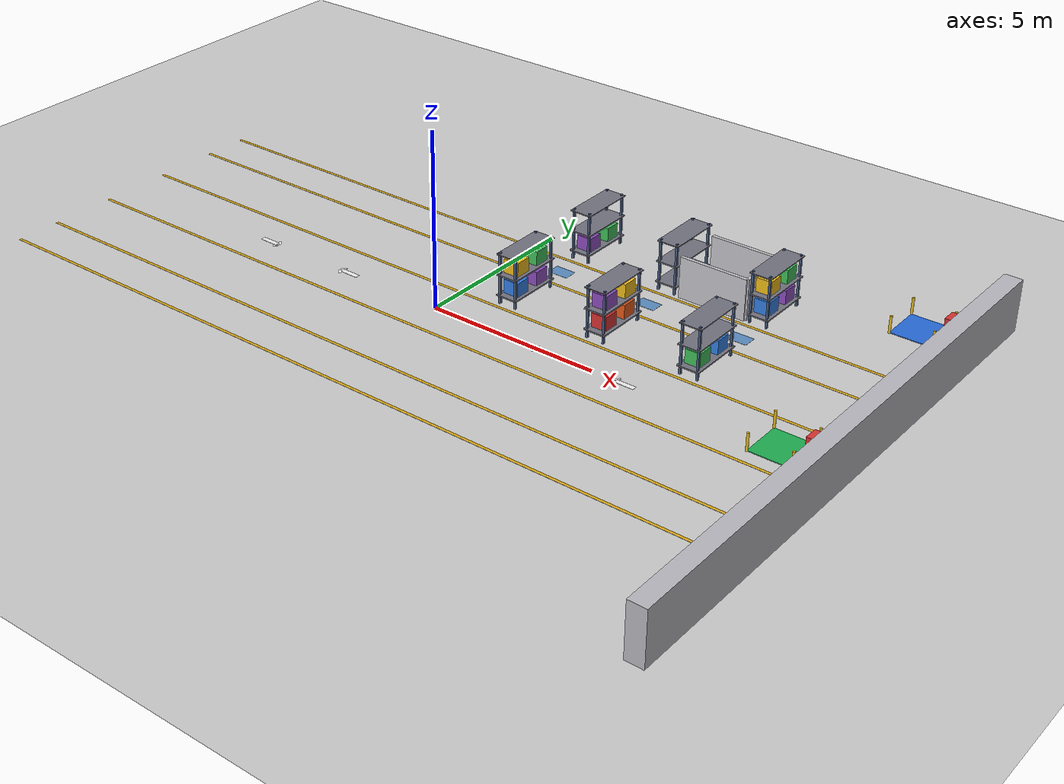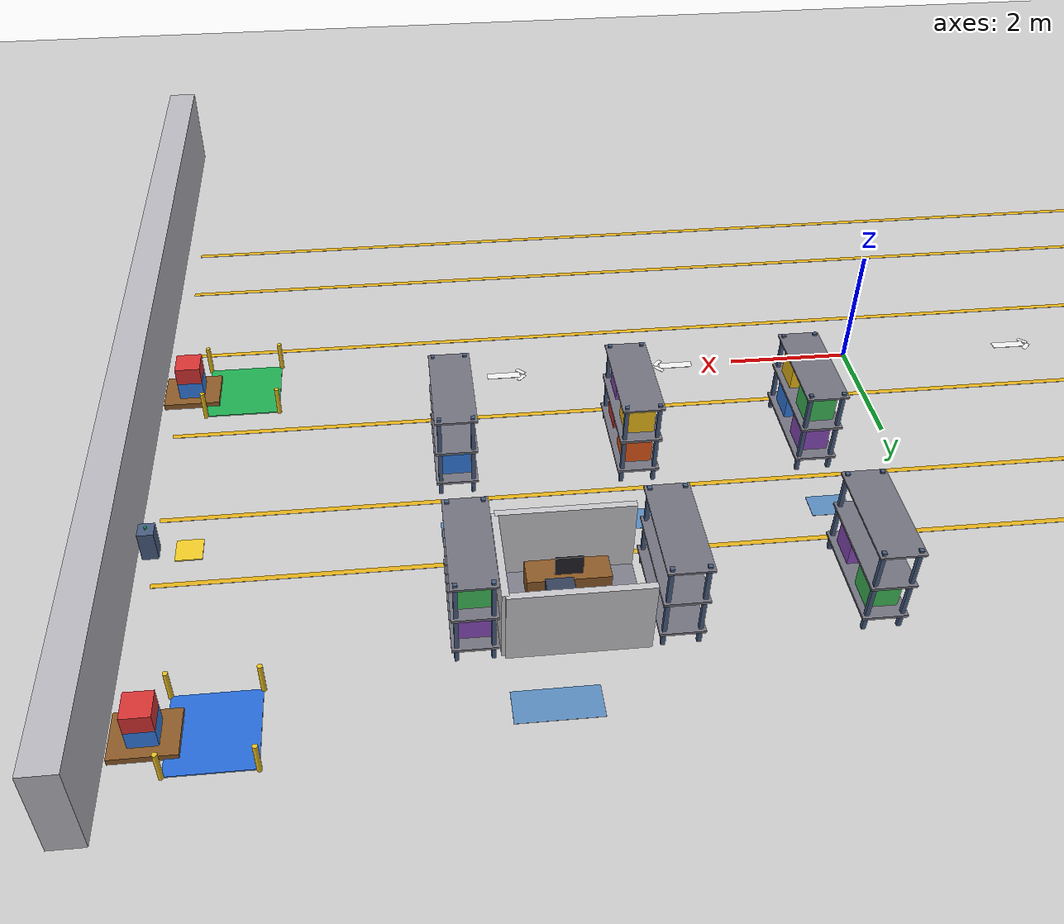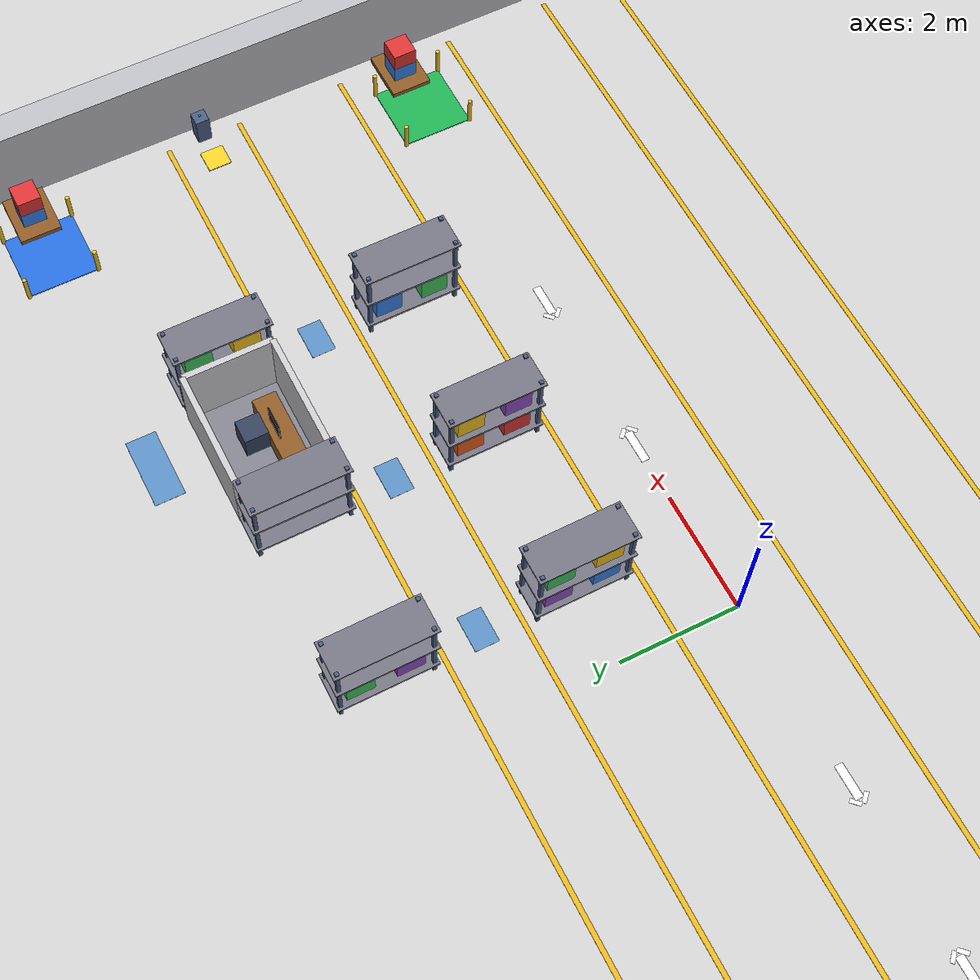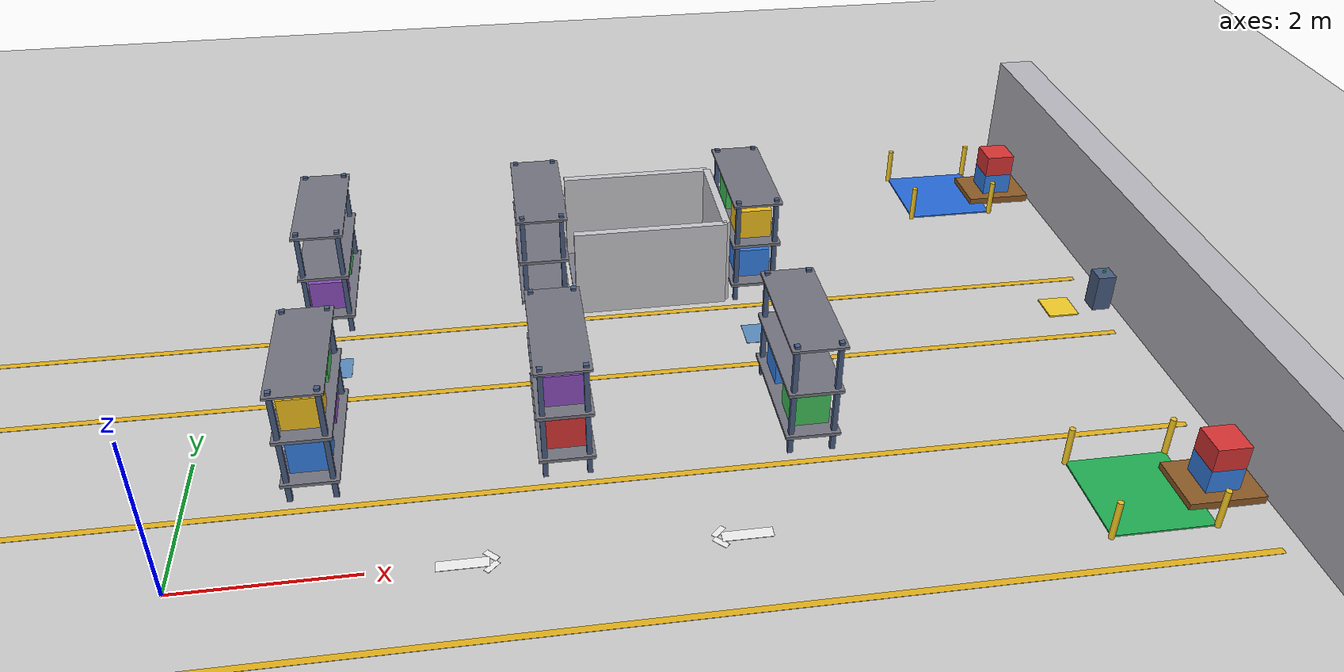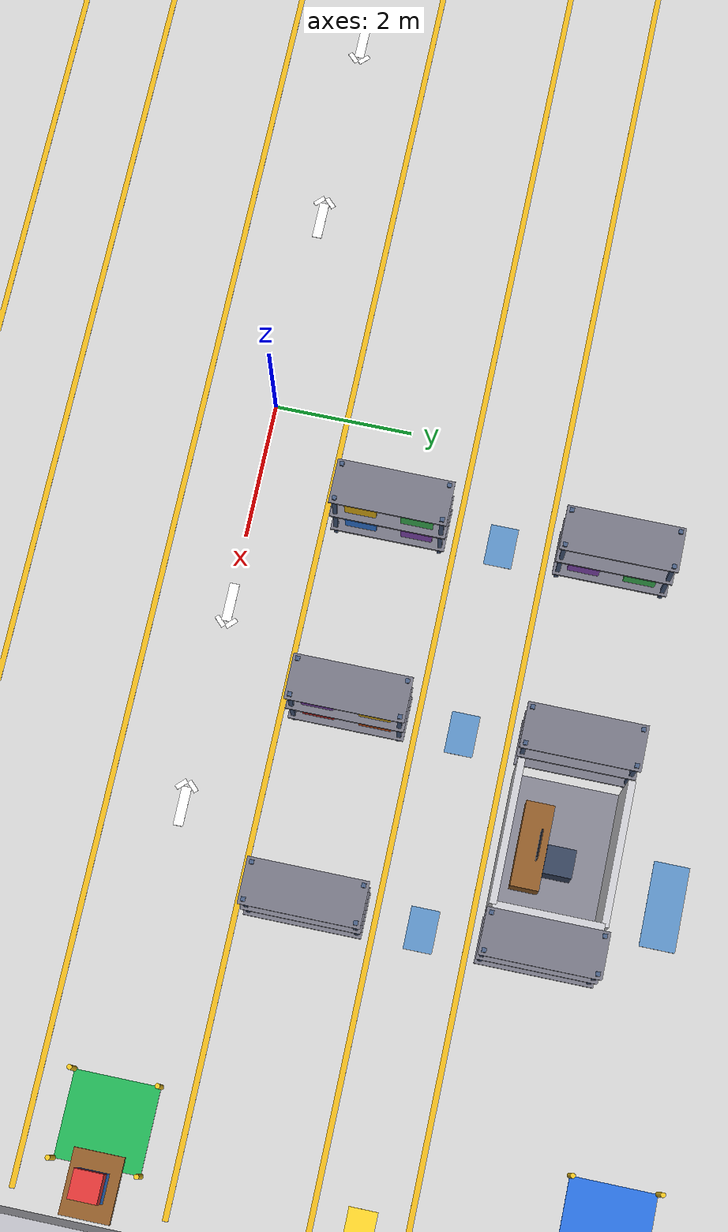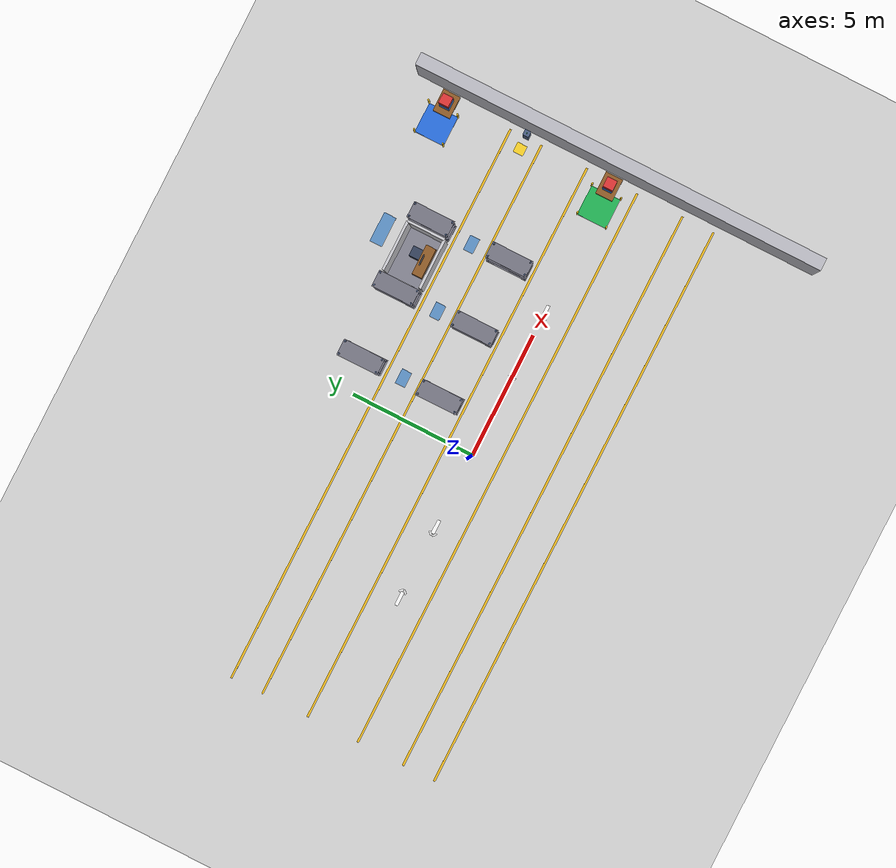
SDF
<sdf version="1.6">
 <world name="warehouse">
  <include><uri>model://ground_plane</uri></include>
  <include><uri>model://sun</uri></include>
  <model name="wall_east">
   <static>true</static>
   <pose>12.0 0 0.75 0 0 0</pose>
   <link name="wall">
    <visual name="wall_v">
     <geometry><box><size>0.5 16.5 1.5</size></box></geometry>
     <material>
      <ambient>0.72 0.72 0.75 1.0</ambient>
      <diffuse>0.72 0.72 0.75 1.0</diffuse>
      <specular>0.1 0.1 0.1 1</specular>
     </material>
    </visual>
    <collision name="wall_c"><geometry><box><size>0.5 16.5 1.5</size></box></geometry></collision>
   </link>
  </model>
  <model name="rack_r0_c3">
   <static>true</static>
   <pose>1.4 5.2 0 0 0 0</pose>
   <link name="col">
    <collision name="col_c">
     <pose>0 0 0.75 0 0 0</pose>
     <geometry><box><size>0.6 1.6 1.5</size></box></geometry>
    </collision>
   </link>
   <link name="post_0_25_0_75">
    <visual name="post_0_25_0_75_v">
     <pose>0.25 0.75 0.75 0 0 0</pose>
     <geometry><box><size>0.06 0.06 1.5</size></box></geometry>
     <material>
      <ambient>0.28 0.36 0.5 1.0</ambient>
      <diffuse>0.28 0.36 0.5 1.0</diffuse>
      <specular>0.1 0.1 0.1 1</specular>
     </material>
    </visual>
   </link>
   <link name="post_0_25_m0_75">
    <visual name="post_0_25_m0_75_v">
     <pose>0.25 -0.75 0.75 0 0 0</pose>
     <geometry><box><size>0.06 0.06 1.5</size></box></geometry>
     <material>
      <ambient>0.28 0.36 0.5 1.0</ambient>
      <diffuse>0.28 0.36 0.5 1.0</diffuse>
      <specular>0.1 0.1 0.1 1</specular>
     </material>
    </visual>
   </link>
   <link name="post_m0_25_0_75">
    <visual name="post_m0_25_0_75_v">
     <pose>-0.25 0.75 0.75 0 0 0</pose>
     <geometry><box><size>0.06 0.06 1.5</size></box></geometry>
     <material>
      <ambient>0.28 0.36 0.5 1.0</ambient>
      <diffuse>0.28 0.36 0.5 1.0</diffuse>
      <specular>0.1 0.1 0.1 1</specular>
     </material>
    </visual>
   </link>
   <link name="post_m0_25_m0_75">
    <visual name="post_m0_25_m0_75_v">
     <pose>-0.25 -0.75 0.75 0 0 0</pose>
     <geometry><box><size>0.06 0.06 1.5</size></box></geometry>
     <material>
      <ambient>0.28 0.36 0.5 1.0</ambient>
      <diffuse>0.28 0.36 0.5 1.0</diffuse>
      <specular>0.1 0.1 0.1 1</specular>
     </material>
    </visual>
   </link>
   <link name="deck_low">
    <visual name="deck_low_v">
     <pose>0 0 0.25 0 0 0</pose>
     <geometry><box><size>0.64 1.6400000000000001 0.04</size></box></geometry>
     <material>
      <ambient>0.45 0.45 0.5 1.0</ambient>
      <diffuse>0.45 0.45 0.5 1.0</diffuse>
      <specular>0.1 0.1 0.1 1</specular>
     </material>
    </visual>
   </link>
   <link name="deck_mid">
    <visual name="deck_mid_v">
     <pose>0 0 0.85 0 0 0</pose>
     <geometry><box><size>0.64 1.6400000000000001 0.04</size></box></geometry>
     <material>
      <ambient>0.45 0.45 0.5 1.0</ambient>
      <diffuse>0.45 0.45 0.5 1.0</diffuse>
      <specular>0.1 0.1 0.1 1</specular>
     </material>
    </visual>
   </link>
   <link name="top_beam">
    <visual name="top_beam_v">
     <pose>0 0 1.45 0 0 0</pose>
     <geometry><box><size>0.64 1.6400000000000001 0.03</size></box></geometry>
     <material>
      <ambient>0.45 0.45 0.5 1.0</ambient>
      <diffuse>0.45 0.45 0.5 1.0</diffuse>
      <specular>0.1 0.1 0.1 1</specular>
     </material>
    </visual>
   </link>
   <link name="box_l1">
    <visual name="box_l1_v">
     <pose>0 0.4 0.47 0 0 0</pose>
     <geometry><box><size>0.45 0.45 0.4</size></box></geometry>
     <material>
      <ambient>0.25 0.75 0.35 1.0</ambient>
      <diffuse>0.25 0.75 0.35 1.0</diffuse>
      <specular>0.1 0.1 0.1 1</specular>
     </material>
    </visual>
   </link>
   <link name="box_l2">
    <visual name="box_l2_v">
     <pose>0 -0.4 0.47 0 0 0</pose>
     <geometry><box><size>0.45 0.45 0.4</size></box></geometry>
     <material>
      <ambient>0.55 0.3 0.75 1.0</ambient>
      <diffuse>0.55 0.3 0.75 1.0</diffuse>
      <specular>0.1 0.1 0.1 1</specular>
     </material>
    </visual>
   </link>
  </model>
  <model name="rack_r0_c4">
   <static>true</static>
   <pose>4.2 5.2 0 0 0 0</pose>
   <link name="col">
    <collision name="col_c">
     <pose>0 0 0.75 0 0 0</pose>
     <geometry><box><size>0.6 1.6 1.5</size></box></geometry>
    </collision>
   </link>
   <link name="post_0_25_0_75">
    <visual name="post_0_25_0_75_v">
     <pose>0.25 0.75 0.75 0 0 0</pose>
     <geometry><box><size>0.06 0.06 1.5</size></box></geometry>
     <material>
      <ambient>0.28 0.36 0.5 1.0</ambient>
      <diffuse>0.28 0.36 0.5 1.0</diffuse>
      <specular>0.1 0.1 0.1 1</specular>
     </material>
    </visual>
   </link>
   <link name="post_0_25_m0_75">
    <visual name="post_0_25_m0_75_v">
     <pose>0.25 -0.75 0.75 0 0 0</pose>
     <geometry><box><size>0.06 0.06 1.5</size></box></geometry>
     <material>
      <ambient>0.28 0.36 0.5 1.0</ambient>
      <diffuse>0.28 0.36 0.5 1.0</diffuse>
      <specular>0.1 0.1 0.1 1</specular>
     </material>
    </visual>
   </link>
   <link name="post_m0_25_0_75">
    <visual name="post_m0_25_0_75_v">
     <pose>-0.25 0.75 0.75 0 0 0</pose>
     <geometry><box><size>0.06 0.06 1.5</size></box></geometry>
     <material>
      <ambient>0.28 0.36 0.5 1.0</ambient>
      <diffuse>0.28 0.36 0.5 1.0</diffuse>
      <specular>0.1 0.1 0.1 1</specular>
     </material>
    </visual>
   </link>
   <link name="post_m0_25_m0_75">
    <visual name="post_m0_25_m0_75_v">
     <pose>-0.25 -0.75 0.75 0 0 0</pose>
     <geometry><box><size>0.06 0.06 1.5</size></box></geometry>
     <material>
      <ambient>0.28 0.36 0.5 1.0</ambient>
      <diffuse>0.28 0.36 0.5 1.0</diffuse>
      <specular>0.1 0.1 0.1 1</specular>
     </material>
    </visual>
   </link>
   <link name="deck_low">
    <visual name="deck_low_v">
     <pose>0 0 0.25 0 0 0</pose>
     <geometry><box><size>0.64 1.6400000000000001 0.04</size></box></geometry>
     <material>
      <ambient>0.45 0.45 0.5 1.0</ambient>
      <diffuse>0.45 0.45 0.5 1.0</diffuse>
      <specular>0.1 0.1 0.1 1</specular>
     </material>
    </visual>
   </link>
   <link name="deck_mid">
    <visual name="deck_mid_v">
     <pose>0 0 0.85 0 0 0</pose>
     <geometry><box><size>0.64 1.6400000000000001 0.04</size></box></geometry>
     <material>
      <ambient>0.45 0.45 0.5 1.0</ambient>
      <diffuse>0.45 0.45 0.5 1.0</diffuse>
      <specular>0.1 0.1 0.1 1</specular>
     </material>
    </visual>
   </link>
   <link name="top_beam">
    <visual name="top_beam_v">
     <pose>0 0 1.45 0 0 0</pose>
     <geometry><box><size>0.64 1.6400000000000001 0.03</size></box></geometry>
     <material>
      <ambient>0.45 0.45 0.5 1.0</ambient>
      <diffuse>0.45 0.45 0.5 1.0</diffuse>
      <specular>0.1 0.1 0.1 1</specular>
     </material>
    </visual>
   </link>
  </model>
  <model name="rack_r0_c5">
   <static>true</static>
   <pose>7.0 5.2 0 0 0 0</pose>
   <link name="col">
    <collision name="col_c">
     <pose>0 0 0.75 0 0 0</pose>
     <geometry><box><size>0.6 1.0 1.5</size></box></geometry>
    </collision>
   </link>
   <link name="post_0_25_0_75">
    <visual name="post_0_25_0_75_v">
     <pose>0.25 0.75 0.75 0 0 0</pose>
     <geometry><box><size>0.06 0.06 1.5</size></box></geometry>
     <material>
      <ambient>0.28 0.36 0.5 1.0</ambient>
      <diffuse>0.28 0.36 0.5 1.0</diffuse>
      <specular>0.1 0.1 0.1 1</specular>
     </material>
    </visual>
   </link>
   <link name="post_0_25_m0_75">
    <visual name="post_0_25_m0_75_v">
     <pose>0.25 -0.75 0.75 0 0 0</pose>
     <geometry><box><size>0.06 0.06 1.5</size></box></geometry>
     <material>
      <ambient>0.28 0.36 0.5 1.0</ambient>
      <diffuse>0.28 0.36 0.5 1.0</diffuse>
      <specular>0.1 0.1 0.1 1</specular>
     </material>
    </visual>
   </link>
   <link name="post_m0_25_0_75">
    <visual name="post_m0_25_0_75_v">
     <pose>-0.25 0.75 0.75 0 0 0</pose>
     <geometry><box><size>0.06 0.06 1.5</size></box></geometry>
     <material>
      <ambient>0.28 0.36 0.5 1.0</ambient>
      <diffuse>0.28 0.36 0.5 1.0</diffuse>
      <specular>0.1 0.1 0.1 1</specular>
     </material>
    </visual>
   </link>
   <link name="post_m0_25_m0_75">
    <visual name="post_m0_25_m0_75_v">
     <pose>-0.25 -0.75 0.75 0 0 0</pose>
     <geometry><box><size>0.06 0.06 1.5</size></box></geometry>
     <material>
      <ambient>0.28 0.36 0.5 1.0</ambient>
      <diffuse>0.28 0.36 0.5 1.0</diffuse>
      <specular>0.1 0.1 0.1 1</specular>
     </material>
    </visual>
   </link>
   <link name="deck_low">
    <visual name="deck_low_v">
     <pose>0 0 0.25 0 0 0</pose>
     <geometry><box><size>0.64 1.6400000000000001 0.04</size></box></geometry>
     <material>
      <ambient>0.45 0.45 0.5 1.0</ambient>
      <diffuse>0.45 0.45 0.5 1.0</diffuse>
      <specular>0.1 0.1 0.1 1</specular>
     </material>
    </visual>
   </link>
   <link name="deck_mid">
    <visual name="deck_mid_v">
     <pose>0 0 0.85 0 0 0</pose>
     <geometry><box><size>0.64 1.6400000000000001 0.04</size></box></geometry>
     <material>
      <ambient>0.45 0.45 0.5 1.0</ambient>
      <diffuse>0.45 0.45 0.5 1.0</diffuse>
      <specular>0.1 0.1 0.1 1</specular>
     </material>
    </visual>
   </link>
   <link name="top_beam">
    <visual name="top_beam_v">
     <pose>0 0 1.45 0 0 0</pose>
     <geometry><box><size>0.64 1.6400000000000001 0.03</size></box></geometry>
     <material>
      <ambient>0.45 0.45 0.5 1.0</ambient>
      <diffuse>0.45 0.45 0.5 1.0</diffuse>
      <specular>0.1 0.1 0.1 1</specular>
     </material>
    </visual>
   </link>
   <link name="box_l1">
    <visual name="box_l1_v">
     <pose>0 0.4 0.47 0 0 0</pose>
     <geometry><box><size>0.45 0.45 0.4</size></box></geometry>
     <material>
      <ambient>0.55 0.3 0.75 1.0</ambient>
      <diffuse>0.55 0.3 0.75 1.0</diffuse>
      <specular>0.1 0.1 0.1 1</specular>
     </material>
    </visual>
   </link>
   <link name="box_l2">
    <visual name="box_l2_v">
     <pose>0 -0.4 0.47 0 0 0</pose>
     <geometry><box><size>0.45 0.45 0.4</size></box></geometry>
     <material>
      <ambient>0.2 0.5 0.9 1.0</ambient>
      <diffuse>0.2 0.5 0.9 1.0</diffuse>
      <specular>0.1 0.1 0.1 1</specular>
     </material>
    </visual>
   </link>
   <link name="box_h1">
    <visual name="box_h1_v">
     <pose>0 0.4 1.07 0 0 0</pose>
     <geometry><box><size>0.45 0.45 0.4</size></box></geometry>
     <material>
      <ambient>0.25 0.75 0.35 1.0</ambient>
      <diffuse>0.25 0.75 0.35 1.0</diffuse>
      <specular>0.1 0.1 0.1 1</specular>
     </material>
    </visual>
   </link>
   <link name="box_h2">
    <visual name="box_h2_v">
     <pose>0 -0.4 1.07 0 0 0</pose>
     <geometry><box><size>0.45 0.45 0.4</size></box></geometry>
     <material>
      <ambient>0.95 0.75 0.1 1.0</ambient>
      <diffuse>0.95 0.75 0.1 1.0</diffuse>
      <specular>0.1 0.1 0.1 1</specular>
     </material>
    </visual>
   </link>
  </model>
  <model name="rack_r1_c3">
   <static>true</static>
   <pose>1.4 2.0 0 0 0 0</pose>
   <link name="col">
    <collision name="col_c">
     <pose>0 0 0.75 0 0 0</pose>
     <geometry><box><size>0.6 1.6 1.5</size></box></geometry>
    </collision>
   </link>
   <link name="post_0_25_0_75">
    <visual name="post_0_25_0_75_v">
     <pose>0.25 0.75 0.75 0 0 0</pose>
     <geometry><box><size>0.06 0.06 1.5</size></box></geometry>
     <material>
      <ambient>0.28 0.36 0.5 1.0</ambient>
      <diffuse>0.28 0.36 0.5 1.0</diffuse>
      <specular>0.1 0.1 0.1 1</specular>
     </material>
    </visual>
   </link>
   <link name="post_0_25_m0_75">
    <visual name="post_0_25_m0_75_v">
     <pose>0.25 -0.75 0.75 0 0 0</pose>
     <geometry><box><size>0.06 0.06 1.5</size></box></geometry>
     <material>
      <ambient>0.28 0.36 0.5 1.0</ambient>
      <diffuse>0.28 0.36 0.5 1.0</diffuse>
      <specular>0.1 0.1 0.1 1</specular>
     </material>
    </visual>
   </link>
   <link name="post_m0_25_0_75">
    <visual name="post_m0_25_0_75_v">
     <pose>-0.25 0.75 0.75 0 0 0</pose>
     <geometry><box><size>0.06 0.06 1.5</size></box></geometry>
     <material>
      <ambient>0.28 0.36 0.5 1.0</ambient>
      <diffuse>0.28 0.36 0.5 1.0</diffuse>
      <specular>0.1 0.1 0.1 1</specular>
     </material>
    </visual>
   </link>
   <link name="post_m0_25_m0_75">
    <visual name="post_m0_25_m0_75_v">
     <pose>-0.25 -0.75 0.75 0 0 0</pose>
     <geometry><box><size>0.06 0.06 1.5</size></box></geometry>
     <material>
      <ambient>0.28 0.36 0.5 1.0</ambient>
      <diffuse>0.28 0.36 0.5 1.0</diffuse>
      <specular>0.1 0.1 0.1 1</specular>
     </material>
    </visual>
   </link>
   <link name="deck_low">
    <visual name="deck_low_v">
     <pose>0 0 0.25 0 0 0</pose>
     <geometry><box><size>0.64 1.6400000000000001 0.04</size></box></geometry>
     <material>
      <ambient>0.45 0.45 0.5 1.0</ambient>
      <diffuse>0.45 0.45 0.5 1.0</diffuse>
      <specular>0.1 0.1 0.1 1</specular>
     </material>
    </visual>
   </link>
   <link name="deck_mid">
    <visual name="deck_mid_v">
     <pose>0 0 0.85 0 0 0</pose>
     <geometry><box><size>0.64 1.6400000000000001 0.04</size></box></geometry>
     <material>
      <ambient>0.45 0.45 0.5 1.0</ambient>
      <diffuse>0.45 0.45 0.5 1.0</diffuse>
      <specular>0.1 0.1 0.1 1</specular>
     </material>
    </visual>
   </link>
   <link name="top_beam">
    <visual name="top_beam_v">
     <pose>0 0 1.45 0 0 0</pose>
     <geometry><box><size>0.64 1.6400000000000001 0.03</size></box></geometry>
     <material>
      <ambient>0.45 0.45 0.5 1.0</ambient>
      <diffuse>0.45 0.45 0.5 1.0</diffuse>
      <specular>0.1 0.1 0.1 1</specular>
     </material>
    </visual>
   </link>
   <link name="box_l1">
    <visual name="box_l1_v">
     <pose>0 0.4 0.47 0 0 0</pose>
     <geometry><box><size>0.45 0.45 0.4</size></box></geometry>
     <material>
      <ambient>0.55 0.3 0.75 1.0</ambient>
      <diffuse>0.55 0.3 0.75 1.0</diffuse>
      <specular>0.1 0.1 0.1 1</specular>
     </material>
    </visual>
   </link>
   <link name="box_l2">
    <visual name="box_l2_v">
     <pose>0 -0.4 0.47 0 0 0</pose>
     <geometry><box><size>0.45 0.45 0.4</size></box></geometry>
     <material>
      <ambient>0.2 0.5 0.9 1.0</ambient>
      <diffuse>0.2 0.5 0.9 1.0</diffuse>
      <specular>0.1 0.1 0.1 1</specular>
     </material>
    </visual>
   </link>
   <link name="box_h1">
    <visual name="box_h1_v">
     <pose>0 0.4 1.07 0 0 0</pose>
     <geometry><box><size>0.45 0.45 0.4</size></box></geometry>
     <material>
      <ambient>0.25 0.75 0.35 1.0</ambient>
      <diffuse>0.25 0.75 0.35 1.0</diffuse>
      <specular>0.1 0.1 0.1 1</specular>
     </material>
    </visual>
   </link>
   <link name="box_h2">
    <visual name="box_h2_v">
     <pose>0 -0.4 1.07 0 0 0</pose>
     <geometry><box><size>0.45 0.45 0.4</size></box></geometry>
     <material>
      <ambient>0.95 0.75 0.1 1.0</ambient>
      <diffuse>0.95 0.75 0.1 1.0</diffuse>
      <specular>0.1 0.1 0.1 1</specular>
     </material>
    </visual>
   </link>
  </model>
  <model name="rack_r1_c4">
   <static>true</static>
   <pose>4.2 2.0 0 0 0 0</pose>
   <link name="col">
    <collision name="col_c">
     <pose>0 0 0.75 0 0 0</pose>
     <geometry><box><size>0.6 1.6 1.5</size></box></geometry>
    </collision>
   </link>
   <link name="post_0_25_0_75">
    <visual name="post_0_25_0_75_v">
     <pose>0.25 0.75 0.75 0 0 0</pose>
     <geometry><box><size>0.06 0.06 1.5</size></box></geometry>
     <material>
      <ambient>0.28 0.36 0.5 1.0</ambient>
      <diffuse>0.28 0.36 0.5 1.0</diffuse>
      <specular>0.1 0.1 0.1 1</specular>
     </material>
    </visual>
   </link>
   <link name="post_0_25_m0_75">
    <visual name="post_0_25_m0_75_v">
     <pose>0.25 -0.75 0.75 0 0 0</pose>
     <geometry><box><size>0.06 0.06 1.5</size></box></geometry>
     <material>
      <ambient>0.28 0.36 0.5 1.0</ambient>
      <diffuse>0.28 0.36 0.5 1.0</diffuse>
      <specular>0.1 0.1 0.1 1</specular>
     </material>
    </visual>
   </link>
   <link name="post_m0_25_0_75">
    <visual name="post_m0_25_0_75_v">
     <pose>-0.25 0.75 0.75 0 0 0</pose>
     <geometry><box><size>0.06 0.06 1.5</size></box></geometry>
     <material>
      <ambient>0.28 0.36 0.5 1.0</ambient>
      <diffuse>0.28 0.36 0.5 1.0</diffuse>
      <specular>0.1 0.1 0.1 1</specular>
     </material>
    </visual>
   </link>
   <link name="post_m0_25_m0_75">
    <visual name="post_m0_25_m0_75_v">
     <pose>-0.25 -0.75 0.75 0 0 0</pose>
     <geometry><box><size>0.06 0.06 1.5</size></box></geometry>
     <material>
      <ambient>0.28 0.36 0.5 1.0</ambient>
      <diffuse>0.28 0.36 0.5 1.0</diffuse>
      <specular>0.1 0.1 0.1 1</specular>
     </material>
    </visual>
   </link>
   <link name="deck_low">
    <visual name="deck_low_v">
     <pose>0 0 0.25 0 0 0</pose>
     <geometry><box><size>0.64 1.6400000000000001 0.04</size></box></geometry>
     <material>
      <ambient>0.45 0.45 0.5 1.0</ambient>
      <diffuse>0.45 0.45 0.5 1.0</diffuse>
      <specular>0.1 0.1 0.1 1</specular>
     </material>
    </visual>
   </link>
   <link name="deck_mid">
    <visual name="deck_mid_v">
     <pose>0 0 0.85 0 0 0</pose>
     <geometry><box><size>0.64 1.6400000000000001 0.04</size></box></geometry>
     <material>
      <ambient>0.45 0.45 0.5 1.0</ambient>
      <diffuse>0.45 0.45 0.5 1.0</diffuse>
      <specular>0.1 0.1 0.1 1</specular>
     </material>
    </visual>
   </link>
   <link name="top_beam">
    <visual name="top_beam_v">
     <pose>0 0 1.45 0 0 0</pose>
     <geometry><box><size>0.64 1.6400000000000001 0.03</size></box></geometry>
     <material>
      <ambient>0.45 0.45 0.5 1.0</ambient>
      <diffuse>0.45 0.45 0.5 1.0</diffuse>
      <specular>0.1 0.1 0.1 1</specular>
     </material>
    </visual>
   </link>
   <link name="box_l1">
    <visual name="box_l1_v">
     <pose>0 0.4 0.47 0 0 0</pose>
     <geometry><box><size>0.45 0.45 0.4</size></box></geometry>
     <material>
      <ambient>0.9 0.35 0.1 1.0</ambient>
      <diffuse>0.9 0.35 0.1 1.0</diffuse>
      <specular>0.1 0.1 0.1 1</specular>
     </material>
    </visual>
   </link>
   <link name="box_l2">
    <visual name="box_l2_v">
     <pose>0 -0.4 0.47 0 0 0</pose>
     <geometry><box><size>0.45 0.45 0.4</size></box></geometry>
     <material>
      <ambient>0.85 0.2 0.2 1.0</ambient>
      <diffuse>0.85 0.2 0.2 1.0</diffuse>
      <specular>0.1 0.1 0.1 1</specular>
     </material>
    </visual>
   </link>
   <link name="box_h1">
    <visual name="box_h1_v">
     <pose>0 0.4 1.07 0 0 0</pose>
     <geometry><box><size>0.45 0.45 0.4</size></box></geometry>
     <material>
      <ambient>0.95 0.75 0.1 1.0</ambient>
      <diffuse>0.95 0.75 0.1 1.0</diffuse>
      <specular>0.1 0.1 0.1 1</specular>
     </material>
    </visual>
   </link>
   <link name="box_h2">
    <visual name="box_h2_v">
     <pose>0 -0.4 1.07 0 0 0</pose>
     <geometry><box><size>0.45 0.45 0.4</size></box></geometry>
     <material>
      <ambient>0.55 0.3 0.75 1.0</ambient>
      <diffuse>0.55 0.3 0.75 1.0</diffuse>
      <specular>0.1 0.1 0.1 1</specular>
     </material>
    </visual>
   </link>
  </model>
  <model name="rack_r1_c5">
   <static>true</static>
   <pose>7.0 2.0 0 0 0 0</pose>
   <link name="col">
    <collision name="col_c">
     <pose>0 0 0.75 0 0 0</pose>
     <geometry><box><size>0.6 1.0 1.5</size></box></geometry>
    </collision>
   </link>
   <link name="post_0_25_0_75">
    <visual name="post_0_25_0_75_v">
     <pose>0.25 0.75 0.75 0 0 0</pose>
     <geometry><box><size>0.06 0.06 1.5</size></box></geometry>
     <material>
      <ambient>0.28 0.36 0.5 1.0</ambient>
      <diffuse>0.28 0.36 0.5 1.0</diffuse>
      <specular>0.1 0.1 0.1 1</specular>
     </material>
    </visual>
   </link>
   <link name="post_0_25_m0_75">
    <visual name="post_0_25_m0_75_v">
     <pose>0.25 -0.75 0.75 0 0 0</pose>
     <geometry><box><size>0.06 0.06 1.5</size></box></geometry>
     <material>
      <ambient>0.28 0.36 0.5 1.0</ambient>
      <diffuse>0.28 0.36 0.5 1.0</diffuse>
      <specular>0.1 0.1 0.1 1</specular>
     </material>
    </visual>
   </link>
   <link name="post_m0_25_0_75">
    <visual name="post_m0_25_0_75_v">
     <pose>-0.25 0.75 0.75 0 0 0</pose>
     <geometry><box><size>0.06 0.06 1.5</size></box></geometry>
     <material>
      <ambient>0.28 0.36 0.5 1.0</ambient>
      <diffuse>0.28 0.36 0.5 1.0</diffuse>
      <specular>0.1 0.1 0.1 1</specular>
     </material>
    </visual>
   </link>
   <link name="post_m0_25_m0_75">
    <visual name="post_m0_25_m0_75_v">
     <pose>-0.25 -0.75 0.75 0 0 0</pose>
     <geometry><box><size>0.06 0.06 1.5</size></box></geometry>
     <material>
      <ambient>0.28 0.36 0.5 1.0</ambient>
      <diffuse>0.28 0.36 0.5 1.0</diffuse>
      <specular>0.1 0.1 0.1 1</specular>
     </material>
    </visual>
   </link>
   <link name="deck_low">
    <visual name="deck_low_v">
     <pose>0 0 0.25 0 0 0</pose>
     <geometry><box><size>0.64 1.6400000000000001 0.04</size></box></geometry>
     <material>
      <ambient>0.45 0.45 0.5 1.0</ambient>
      <diffuse>0.45 0.45 0.5 1.0</diffuse>
      <specular>0.1 0.1 0.1 1</specular>
     </material>
    </visual>
   </link>
   <link name="deck_mid">
    <visual name="deck_mid_v">
     <pose>0 0 0.85 0 0 0</pose>
     <geometry><box><size>0.64 1.6400000000000001 0.04</size></box></geometry>
     <material>
      <ambient>0.45 0.45 0.5 1.0</ambient>
      <diffuse>0.45 0.45 0.5 1.0</diffuse>
      <specular>0.1 0.1 0.1 1</specular>
     </material>
    </visual>
   </link>
   <link name="top_beam">
    <visual name="top_beam_v">
     <pose>0 0 1.45 0 0 0</pose>
     <geometry><box><size>0.64 1.6400000000000001 0.03</size></box></geometry>
     <material>
      <ambient>0.45 0.45 0.5 1.0</ambient>
      <diffuse>0.45 0.45 0.5 1.0</diffuse>
      <specular>0.1 0.1 0.1 1</specular>
     </material>
    </visual>
   </link>
   <link name="box_l1">
    <visual name="box_l1_v">
     <pose>0 0.4 0.47 0 0 0</pose>
     <geometry><box><size>0.45 0.45 0.4</size></box></geometry>
     <material>
      <ambient>0.2 0.5 0.9 1.0</ambient>
      <diffuse>0.2 0.5 0.9 1.0</diffuse>
      <specular>0.1 0.1 0.1 1</specular>
     </material>
    </visual>
   </link>
   <link name="box_l2">
    <visual name="box_l2_v">
     <pose>0 -0.4 0.47 0 0 0</pose>
     <geometry><box><size>0.45 0.45 0.4</size></box></geometry>
     <material>
      <ambient>0.25 0.75 0.35 1.0</ambient>
      <diffuse>0.25 0.75 0.35 1.0</diffuse>
      <specular>0.1 0.1 0.1 1</specular>
     </material>
    </visual>
   </link>
  </model>
  <model name="station_pickup_e">
   <static>true</static>
   <pose>10.4 0.0 0 0 0 0.0</pose>
   <link name="zone">
    <visual name="zone_v">
     <pose>0 0 0.01 0 0 0</pose>
     <geometry><box><size>1.2 1.2 0.02</size></box></geometry>
     <material>
      <ambient>0.12 0.68 0.32 1.0</ambient>
      <diffuse>0.12 0.68 0.32 1.0</diffuse>
      <specular>0.1 0.1 0.1 1</specular>
     </material>
    </visual>
   </link>
   <link name="stopline">
    <visual name="stopline_v">
     <pose>0 0.28 0.011 0 0 0</pose>
     <geometry><box><size>1.1 0.06 0.012</size></box></geometry>
     <material>
      <ambient>0.95 0.95 0.95 1.0</ambient>
      <diffuse>0.95 0.95 0.95 1.0</diffuse>
      <specular>0.1 0.1 0.1 1</specular>
     </material>
    </visual>
   </link>
   <link name="bollard_0_6_0_6">
    <visual name="bollard_0_6_0_6_v">
     <pose>0.6 0.6 0.25 0 0 0</pose>
     <geometry><cylinder><radius>0.035</radius><length>0.5</length></cylinder></geometry>
     <material>
      <ambient>0.92 0.75 0.12 1.0</ambient>
      <diffuse>0.92 0.75 0.12 1.0</diffuse>
      <specular>0.1 0.1 0.1 1</specular>
     </material>
    </visual>
   </link>
   <link name="bollard_0_6_m0_6">
    <visual name="bollard_0_6_m0_6_v">
     <pose>0.6 -0.6 0.25 0 0 0</pose>
     <geometry><cylinder><radius>0.035</radius><length>0.5</length></cylinder></geometry>
     <material>
      <ambient>0.92 0.75 0.12 1.0</ambient>
      <diffuse>0.92 0.75 0.12 1.0</diffuse>
      <specular>0.1 0.1 0.1 1</specular>
     </material>
    </visual>
   </link>
   <link name="bollard_m0_6_0_6">
    <visual name="bollard_m0_6_0_6_v">
     <pose>-0.6 0.6 0.25 0 0 0</pose>
     <geometry><cylinder><radius>0.035</radius><length>0.5</length></cylinder></geometry>
     <material>
      <ambient>0.92 0.75 0.12 1.0</ambient>
      <diffuse>0.92 0.75 0.12 1.0</diffuse>
      <specular>0.1 0.1 0.1 1</specular>
     </material>
    </visual>
   </link>
   <link name="bollard_m0_6_m0_6">
    <visual name="bollard_m0_6_m0_6_v">
     <pose>-0.6 -0.6 0.25 0 0 0</pose>
     <geometry><cylinder><radius>0.035</radius><length>0.5</length></cylinder></geometry>
     <material>
      <ambient>0.92 0.75 0.12 1.0</ambient>
      <diffuse>0.92 0.75 0.12 1.0</diffuse>
      <specular>0.1 0.1 0.1 1</specular>
     </material>
    </visual>
   </link>
   <link name="pallet">
    <visual name="pallet_v">
     <pose>0.85 0 0.05 0 0 0</pose>
     <geometry><box><size>0.9 0.7 0.1</size></box></geometry>
     <material>
      <ambient>0.55 0.35 0.15 1.0</ambient>
      <diffuse>0.55 0.35 0.15 1.0</diffuse>
      <specular>0.1 0.1 0.1 1</specular>
     </material>
    </visual>
    <collision name="pallet_c">
     <pose>0.85 0 0.05 0 0 0</pose>
     <geometry><box><size>0.9 0.7 0.1</size></box></geometry>
    </collision>
   </link>
   <link name="goods1">
    <visual name="goods1_v">
     <pose>0.85 0 0.25 0 0 0</pose>
     <geometry><box><size>0.4 0.4 0.3</size></box></geometry>
     <material>
      <ambient>0.2 0.5 0.9 1.0</ambient>
      <diffuse>0.2 0.5 0.9 1.0</diffuse>
      <specular>0.1 0.1 0.1 1</specular>
     </material>
    </visual>
    <collision name="goods1_c">
     <pose>0.85 0 0.25 0 0 0</pose>
     <geometry><box><size>0.4 0.4 0.3</size></box></geometry>
    </collision>
   </link>
   <link name="goods2">
    <visual name="goods2_v">
     <pose>0.85 0 0.55 0 0 0</pose>
     <geometry><box><size>0.4 0.4 0.3</size></box></geometry>
     <material>
      <ambient>0.85 0.2 0.2 1.0</ambient>
      <diffuse>0.85 0.2 0.2 1.0</diffuse>
      <specular>0.1 0.1 0.1 1</specular>
     </material>
    </visual>
    <collision name="goods2_c">
     <pose>0.85 0 0.55 0 0 0</pose>
     <geometry><box><size>0.4 0.4 0.3</size></box></geometry>
    </collision>
   </link>
  </model>
  <model name="station_dropoff_ne">
   <static>true</static>
   <pose>10.4 6.8 0 0 0 0.0</pose>
   <link name="zone">
    <visual name="zone_v">
     <pose>0 0 0.01 0 0 0</pose>
     <geometry><box><size>1.2 1.2 0.02</size></box></geometry>
     <material>
      <ambient>0.15 0.42 0.85 1.0</ambient>
      <diffuse>0.15 0.42 0.85 1.0</diffuse>
      <specular>0.1 0.1 0.1 1</specular>
     </material>
    </visual>
   </link>
   <link name="stopline">
    <visual name="stopline_v">
     <pose>0 0.28 0.011 0 0 0</pose>
     <geometry><box><size>1.1 0.06 0.012</size></box></geometry>
     <material>
      <ambient>0.95 0.95 0.95 1.0</ambient>
      <diffuse>0.95 0.95 0.95 1.0</diffuse>
      <specular>0.1 0.1 0.1 1</specular>
     </material>
    </visual>
   </link>
   <link name="bollard_0_6_0_6">
    <visual name="bollard_0_6_0_6_v">
     <pose>0.6 0.6 0.25 0 0 0</pose>
     <geometry><cylinder><radius>0.035</radius><length>0.5</length></cylinder></geometry>
     <material>
      <ambient>0.92 0.75 0.12 1.0</ambient>
      <diffuse>0.92 0.75 0.12 1.0</diffuse>
      <specular>0.1 0.1 0.1 1</specular>
     </material>
    </visual>
   </link>
   <link name="bollard_0_6_m0_6">
    <visual name="bollard_0_6_m0_6_v">
     <pose>0.6 -0.6 0.25 0 0 0</pose>
     <geometry><cylinder><radius>0.035</radius><length>0.5</length></cylinder></geometry>
     <material>
      <ambient>0.92 0.75 0.12 1.0</ambient>
      <diffuse>0.92 0.75 0.12 1.0</diffuse>
      <specular>0.1 0.1 0.1 1</specular>
     </material>
    </visual>
   </link>
   <link name="bollard_m0_6_0_6">
    <visual name="bollard_m0_6_0_6_v">
     <pose>-0.6 0.6 0.25 0 0 0</pose>
     <geometry><cylinder><radius>0.035</radius><length>0.5</length></cylinder></geometry>
     <material>
      <ambient>0.92 0.75 0.12 1.0</ambient>
      <diffuse>0.92 0.75 0.12 1.0</diffuse>
      <specular>0.1 0.1 0.1 1</specular>
     </material>
    </visual>
   </link>
   <link name="bollard_m0_6_m0_6">
    <visual name="bollard_m0_6_m0_6_v">
     <pose>-0.6 -0.6 0.25 0 0 0</pose>
     <geometry><cylinder><radius>0.035</radius><length>0.5</length></cylinder></geometry>
     <material>
      <ambient>0.92 0.75 0.12 1.0</ambient>
      <diffuse>0.92 0.75 0.12 1.0</diffuse>
      <specular>0.1 0.1 0.1 1</specular>
     </material>
    </visual>
   </link>
   <link name="pallet">
    <visual name="pallet_v">
     <pose>0.85 0 0.05 0 0 0</pose>
     <geometry><box><size>0.9 0.7 0.1</size></box></geometry>
     <material>
      <ambient>0.55 0.35 0.15 1.0</ambient>
      <diffuse>0.55 0.35 0.15 1.0</diffuse>
      <specular>0.1 0.1 0.1 1</specular>
     </material>
    </visual>
    <collision name="pallet_c">
     <pose>0.85 0 0.05 0 0 0</pose>
     <geometry><box><size>0.9 0.7 0.1</size></box></geometry>
    </collision>
   </link>
   <link name="goods1">
    <visual name="goods1_v">
     <pose>0.85 0 0.25 0 0 0</pose>
     <geometry><box><size>0.4 0.4 0.3</size></box></geometry>
     <material>
      <ambient>0.2 0.5 0.9 1.0</ambient>
      <diffuse>0.2 0.5 0.9 1.0</diffuse>
      <specular>0.1 0.1 0.1 1</specular>
     </material>
    </visual>
    <collision name="goods1_c">
     <pose>0.85 0 0.25 0 0 0</pose>
     <geometry><box><size>0.4 0.4 0.3</size></box></geometry>
    </collision>
   </link>
   <link name="goods2">
    <visual name="goods2_v">
     <pose>0.85 0 0.55 0 0 0</pose>
     <geometry><box><size>0.4 0.4 0.3</size></box></geometry>
     <material>
      <ambient>0.85 0.2 0.2 1.0</ambient>
      <diffuse>0.85 0.2 0.2 1.0</diffuse>
      <specular>0.1 0.1 0.1 1</specular>
     </material>
    </visual>
    <collision name="goods2_c">
     <pose>0.85 0 0.55 0 0 0</pose>
     <geometry><box><size>0.4 0.4 0.3</size></box></geometry>
    </collision>
   </link>
  </model>
  <model name="charger_1">
   <static>true</static>
   <pose>11.0 3.6 0 0 0 0.0</pose>
   <link name="pad">
    <visual name="pad_v">
     <pose>0 0 0.01 0 0 0</pose>
     <geometry><box><size>0.4 0.4 0.02</size></box></geometry>
     <material>
      <ambient>0.95 0.8 0.15 1.0</ambient>
      <diffuse>0.95 0.8 0.15 1.0</diffuse>
      <specular>0.1 0.1 0.1 1</specular>
     </material>
    </visual>
   </link>
   <link name="body">
    <visual name="body_v">
     <pose>0.55 0 0.25 0 0 0</pose>
     <geometry><box><size>0.24 0.24 0.5</size></box></geometry>
     <material>
      <ambient>0.28 0.36 0.5 1.0</ambient>
      <diffuse>0.28 0.36 0.5 1.0</diffuse>
      <specular>0.1 0.1 0.1 1</specular>
     </material>
    </visual>
    <collision name="body_c">
     <pose>0.55 0 0.25 0 0 0</pose>
     <geometry><box><size>0.24 0.24 0.5</size></box></geometry>
    </collision>
   </link>
   <link name="led">
    <visual name="led_v">
     <pose>0.55 0 0.53 0 0 0</pose>
     <geometry><cylinder><radius>0.02</radius><length>0.03</length></cylinder></geometry>
     <material>
      <ambient>0.12 0.68 0.32 1.0</ambient>
      <diffuse>0.12 0.68 0.32 1.0</diffuse>
      <specular>0.1 0.1 0.1 1</specular>
     </material>
    </visual>
    <collision name="led_c">
     <pose>0.55 0 0.53 0 0 0</pose>
     <geometry><cylinder><radius>0.02</radius><length>0.03</length></cylinder></geometry>
    </collision>
   </link>
  </model>
  <model name="rack_bay_3">
   <static>true</static>
   <pose>1.4 3.6 0 0 0 0</pose>
   <link name="pad">
    <visual name="pad_v">
     <pose>0 0 0.005 0 0 0</pose>
     <geometry><box><size>0.6 0.4 0.005</size></box></geometry>
     <material>
      <ambient>0.35 0.55 0.75 1.0</ambient>
      <diffuse>0.35 0.55 0.75 1.0</diffuse>
      <specular>0.1 0.1 0.1 1</specular>
     </material>
    </visual>
   </link>
  </model>
  <model name="rack_bay_4">
   <static>true</static>
   <pose>4.2 3.6 0 0 0 0</pose>
   <link name="pad">
    <visual name="pad_v">
     <pose>0 0 0.005 0 0 0</pose>
     <geometry><box><size>0.6 0.4 0.005</size></box></geometry>
     <material>
      <ambient>0.35 0.55 0.75 1.0</ambient>
      <diffuse>0.35 0.55 0.75 1.0</diffuse>
      <specular>0.1 0.1 0.1 1</specular>
     </material>
    </visual>
   </link>
  </model>
  <model name="rack_bay_5">
   <static>true</static>
   <pose>7.0 3.6 0 0 0 0</pose>
   <link name="pad">
    <visual name="pad_v">
     <pose>0 0 0.005 0 0 0</pose>
     <geometry><box><size>0.6 0.4 0.005</size></box></geometry>
     <material>
      <ambient>0.35 0.55 0.75 1.0</ambient>
      <diffuse>0.35 0.55 0.75 1.0</diffuse>
      <specular>0.1 0.1 0.1 1</specular>
     </material>
    </visual>
   </link>
  </model>
  <model name="port_pad_1">
   <static>true</static>
   <pose>6.0 6.8 0 0 0 0</pose>
   <link name="pad">
    <visual name="pad_v">
     <pose>0 0 0.005 0 0 0</pose>
     <geometry><box><size>1.2 0.5 0.005</size></box></geometry>
     <material>
      <ambient>0.35 0.55 0.75 1.0</ambient>
      <diffuse>0.35 0.55 0.75 1.0</diffuse>
      <specular>0.1 0.1 0.1 1</specular>
     </material>
    </visual>
   </link>
  </model>
  <model name="control_room">
   <static>true</static>
   <pose>5.6 5.2 0 0 0 0</pose>
   <link name="floor">
    <visual name="floor_v">
     <pose>0 0 0.01 0 0 0</pose>
     <geometry><box><size>2.0 1.5 0.02</size></box></geometry>
     <material>
      <ambient>0.5 0.5 0.55 1.0</ambient>
      <diffuse>0.5 0.5 0.55 1.0</diffuse>
      <specular>0.1 0.1 0.1 1</specular>
     </material>
    </visual>
    <collision name="floor_c">
     <pose>0 0 0.01 0 0 0</pose>
     <geometry><box><size>2.0 1.5 0.02</size></box></geometry>
    </collision>
   </link>
   <link name="wall_east">
    <visual name="wall_east_v">
     <pose>1.0 0 0.6 0 0 0</pose>
     <geometry><box><size>0.1 1.5 1.2</size></box></geometry>
     <material>
      <ambient>0.78 0.78 0.8 1.0</ambient>
      <diffuse>0.78 0.78 0.8 1.0</diffuse>
      <specular>0.1 0.1 0.1 1</specular>
     </material>
    </visual>
    <collision name="wall_east_c">
     <pose>1.0 0 0.6 0 0 0</pose>
     <geometry><box><size>0.1 1.5 1.2</size></box></geometry>
    </collision>
   </link>
   <link name="wall_north">
    <visual name="wall_north_v">
     <pose>0 0.75 0.6 0 0 0</pose>
     <geometry><box><size>2.0 0.1 1.2</size></box></geometry>
     <material>
      <ambient>0.78 0.78 0.8 1.0</ambient>
      <diffuse>0.78 0.78 0.8 1.0</diffuse>
      <specular>0.1 0.1 0.1 1</specular>
     </material>
    </visual>
    <collision name="wall_north_c">
     <pose>0 0.75 0.6 0 0 0</pose>
     <geometry><box><size>2.0 0.1 1.2</size></box></geometry>
    </collision>
   </link>
   <link name="wall_south">
    <visual name="wall_south_v">
     <pose>0 -0.75 0.6 0 0 0</pose>
     <geometry><box><size>2.0 0.1 1.2</size></box></geometry>
     <material>
      <ambient>0.78 0.78 0.8 1.0</ambient>
      <diffuse>0.78 0.78 0.8 1.0</diffuse>
      <specular>0.1 0.1 0.1 1</specular>
     </material>
    </visual>
    <collision name="wall_south_c">
     <pose>0 -0.75 0.6 0 0 0</pose>
     <geometry><box><size>2.0 0.1 1.2</size></box></geometry>
    </collision>
   </link>
   <link name="desk">
    <visual name="desk_v">
     <pose>0 -0.35 0.2 0 0 0</pose>
     <geometry><box><size>1.2 0.4 0.4</size></box></geometry>
     <material>
      <ambient>0.55 0.35 0.15 1.0</ambient>
      <diffuse>0.55 0.35 0.15 1.0</diffuse>
      <specular>0.1 0.1 0.1 1</specular>
     </material>
    </visual>
    <collision name="desk_c">
     <pose>0 -0.35 0.2 0 0 0</pose>
     <geometry><box><size>1.2 0.4 0.4</size></box></geometry>
    </collision>
   </link>
   <link name="monitor">
    <visual name="monitor_v">
     <pose>0 -0.27 0.55 0 0 0</pose>
     <geometry><box><size>0.4 0.02 0.35</size></box></geometry>
     <material>
      <ambient>0.12 0.12 0.15 1.0</ambient>
      <diffuse>0.12 0.12 0.15 1.0</diffuse>
      <specular>0.1 0.1 0.1 1</specular>
     </material>
    </visual>
    <collision name="monitor_c">
     <pose>0 -0.27 0.55 0 0 0</pose>
     <geometry><box><size>0.4 0.02 0.35</size></box></geometry>
    </collision>
   </link>
   <link name="chair">
    <visual name="chair_v">
     <pose>0.15 0.05 0.225 0 0 0</pose>
     <geometry><box><size>0.4 0.4 0.45</size></box></geometry>
     <material>
      <ambient>0.2 0.25 0.35 1.0</ambient>
      <diffuse>0.2 0.25 0.35 1.0</diffuse>
      <specular>0.1 0.1 0.1 1</specular>
     </material>
    </visual>
    <collision name="chair_c">
     <pose>0.15 0.05 0.225 0 0 0</pose>
     <geometry><box><size>0.4 0.4 0.45</size></box></geometry>
    </collision>
   </link>
  </model>
  <model name="safe_line_y105">
   <static>true</static>
   <link name="line">
    <visual name="line_v">
     <pose>0 1.05 0.005 0 0 0</pose>
     <geometry><box><size>23.0 0.08 0.005</size></box></geometry>
     <material>
      <ambient>0.9 0.7 0.1 1.0</ambient>
      <diffuse>0.9 0.7 0.1 1.0</diffuse>
      <specular>0.1 0.1 0.1 1</specular>
     </material>
    </visual>
   </link>
  </model>
  <model name="safe_line_ym105">
   <static>true</static>
   <link name="line">
    <visual name="line_v">
     <pose>0 -1.05 0.005 0 0 0</pose>
     <geometry><box><size>23.0 0.08 0.005</size></box></geometry>
     <material>
      <ambient>0.9 0.7 0.1 1.0</ambient>
      <diffuse>0.9 0.7 0.1 1.0</diffuse>
      <specular>0.1 0.1 0.1 1</specular>
     </material>
    </visual>
   </link>
  </model>
  <model name="safe_line_y295">
   <static>true</static>
   <link name="line">
    <visual name="line_v">
     <pose>0 2.95 0.005 0 0 0</pose>
     <geometry><box><size>23.0 0.08 0.005</size></box></geometry>
     <material>
      <ambient>0.9 0.7 0.1 1.0</ambient>
      <diffuse>0.9 0.7 0.1 1.0</diffuse>
      <specular>0.1 0.1 0.1 1</specular>
     </material>
    </visual>
   </link>
  </model>
  <model name="safe_line_y425">
   <static>true</static>
   <link name="line">
    <visual name="line_v">
     <pose>0 4.25 0.005 0 0 0</pose>
     <geometry><box><size>23.0 0.08 0.005</size></box></geometry>
     <material>
      <ambient>0.9 0.7 0.1 1.0</ambient>
      <diffuse>0.9 0.7 0.1 1.0</diffuse>
      <specular>0.1 0.1 0.1 1</specular>
     </material>
    </visual>
   </link>
  </model>
  <model name="safe_line_ym295">
   <static>true</static>
   <link name="line">
    <visual name="line_v">
     <pose>0 -2.95 0.005 0 0 0</pose>
     <geometry><box><size>23.0 0.08 0.005</size></box></geometry>
     <material>
      <ambient>0.9 0.7 0.1 1.0</ambient>
      <diffuse>0.9 0.7 0.1 1.0</diffuse>
      <specular>0.1 0.1 0.1 1</specular>
     </material>
    </visual>
   </link>
  </model>
  <model name="safe_line_ym425">
   <static>true</static>
   <link name="line">
    <visual name="line_v">
     <pose>0 -4.25 0.005 0 0 0</pose>
     <geometry><box><size>23.0 0.08 0.005</size></box></geometry>
     <material>
      <ambient>0.9 0.7 0.1 1.0</ambient>
      <diffuse>0.9 0.7 0.1 1.0</diffuse>
      <specular>0.1 0.1 0.1 1</specular>
     </material>
    </visual>
   </link>
  </model>
  <model name="arrow_1">
   <static>true</static>
   <link name="shaft">
    <visual name="shaft_v">
     <pose>-6.0 0.0 0.005 0 0 0</pose>
     <geometry><box><size>0.56 0.14 0.005</size></box></geometry>
     <material>
      <ambient>0.95 0.95 0.95 1.0</ambient>
      <diffuse>0.95 0.95 0.95 1.0</diffuse>
      <specular>0.1 0.1 0.1 1</specular>
     </material>
    </visual>
   </link>
   <link name="fin1">
    <visual name="fin1_v">
     <pose>-5.7 -0.08 0.005 0 0 0.785</pose>
     <geometry><box><size>0.18 0.07 0.005</size></box></geometry>
     <material>
      <ambient>0.95 0.95 0.95 1.0</ambient>
      <diffuse>0.95 0.95 0.95 1.0</diffuse>
      <specular>0.1 0.1 0.1 1</specular>
     </material>
    </visual>
   </link>
   <link name="fin2">
    <visual name="fin2_v">
     <pose>-5.7 0.08 0.005 0 0 -0.785</pose>
     <geometry><box><size>0.18 0.07 0.005</size></box></geometry>
     <material>
      <ambient>0.95 0.95 0.95 1.0</ambient>
      <diffuse>0.95 0.95 0.95 1.0</diffuse>
      <specular>0.1 0.1 0.1 1</specular>
     </material>
    </visual>
   </link>
  </model>
  <model name="arrow_2">
   <static>true</static>
   <link name="shaft">
    <visual name="shaft_v">
     <pose>-3.0 0.0 0.005 0 0 0</pose>
     <geometry><box><size>0.56 0.14 0.005</size></box></geometry>
     <material>
      <ambient>0.95 0.95 0.95 1.0</ambient>
      <diffuse>0.95 0.95 0.95 1.0</diffuse>
      <specular>0.1 0.1 0.1 1</specular>
     </material>
    </visual>
   </link>
   <link name="fin1">
    <visual name="fin1_v">
     <pose>-3.3 -0.08 0.005 0 0 -0.785</pose>
     <geometry><box><size>0.18 0.07 0.005</size></box></geometry>
     <material>
      <ambient>0.95 0.95 0.95 1.0</ambient>
      <diffuse>0.95 0.95 0.95 1.0</diffuse>
      <specular>0.1 0.1 0.1 1</specular>
     </material>
    </visual>
   </link>
   <link name="fin2">
    <visual name="fin2_v">
     <pose>-3.3 0.08 0.005 0 0 0.785</pose>
     <geometry><box><size>0.18 0.07 0.005</size></box></geometry>
     <material>
      <ambient>0.95 0.95 0.95 1.0</ambient>
      <diffuse>0.95 0.95 0.95 1.0</diffuse>
      <specular>0.1 0.1 0.1 1</specular>
     </material>
    </visual>
   </link>
  </model>
  <model name="arrow_3">
   <static>true</static>
   <link name="shaft">
    <visual name="shaft_v">
     <pose>3.0 0.0 0.005 0 0 0</pose>
     <geometry><box><size>0.56 0.14 0.005</size></box></geometry>
     <material>
      <ambient>0.95 0.95 0.95 1.0</ambient>
      <diffuse>0.95 0.95 0.95 1.0</diffuse>
      <specular>0.1 0.1 0.1 1</specular>
     </material>
    </visual>
   </link>
   <link name="fin1">
    <visual name="fin1_v">
     <pose>3.3 -0.08 0.005 0 0 0.785</pose>
     <geometry><box><size>0.18 0.07 0.005</size></box></geometry>
     <material>
      <ambient>0.95 0.95 0.95 1.0</ambient>
      <diffuse>0.95 0.95 0.95 1.0</diffuse>
      <specular>0.1 0.1 0.1 1</specular>
     </material>
    </visual>
   </link>
   <link name="fin2">
    <visual name="fin2_v">
     <pose>3.3 0.08 0.005 0 0 -0.785</pose>
     <geometry><box><size>0.18 0.07 0.005</size></box></geometry>
     <material>
      <ambient>0.95 0.95 0.95 1.0</ambient>
      <diffuse>0.95 0.95 0.95 1.0</diffuse>
      <specular>0.1 0.1 0.1 1</specular>
     </material>
    </visual>
   </link>
  </model>
  <model name="arrow_4">
   <static>true</static>
   <link name="shaft">
    <visual name="shaft_v">
     <pose>6.0 0.0 0.005 0 0 0</pose>
     <geometry><box><size>0.56 0.14 0.005</size></box></geometry>
     <material>
      <ambient>0.95 0.95 0.95 1.0</ambient>
      <diffuse>0.95 0.95 0.95 1.0</diffuse>
      <specular>0.1 0.1 0.1 1</specular>
     </material>
    </visual>
   </link>
   <link name="fin1">
    <visual name="fin1_v">
     <pose>5.7 -0.08 0.005 0 0 -0.785</pose>
     <geometry><box><size>0.18 0.07 0.005</size></box></geometry>
     <material>
      <ambient>0.95 0.95 0.95 1.0</ambient>
      <diffuse>0.95 0.95 0.95 1.0</diffuse>
      <specular>0.1 0.1 0.1 1</specular>
     </material>
    </visual>
   </link>
   <link name="fin2">
    <visual name="fin2_v">
     <pose>5.7 0.08 0.005 0 0 0.785</pose>
     <geometry><box><size>0.18 0.07 0.005</size></box></geometry>
     <material>
      <ambient>0.95 0.95 0.95 1.0</ambient>
      <diffuse>0.95 0.95 0.95 1.0</diffuse>
      <specular>0.1 0.1 0.1 1</specular>
     </material>
    </visual>
   </link>
  </model>
 </world>
</sdf>
